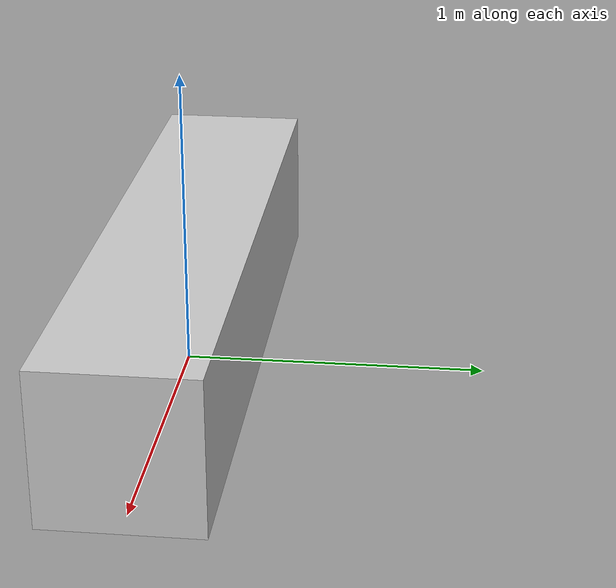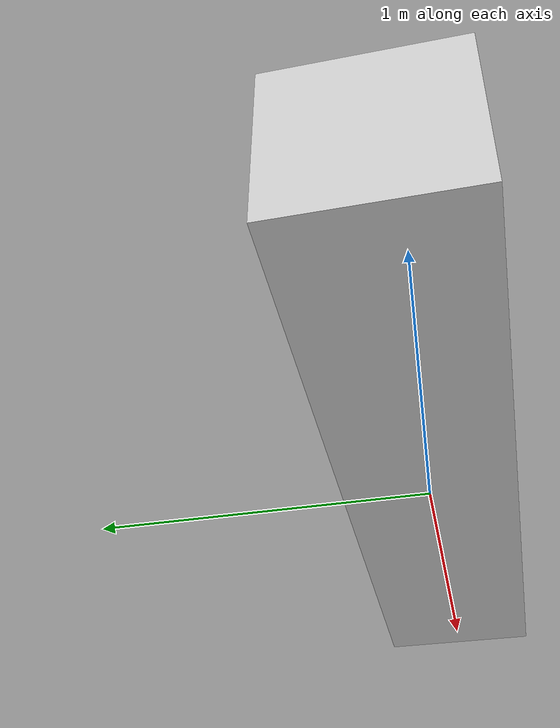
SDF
<?xml version="1.0"?>
<sdf version="1.6">
  <model name="rwc2013/tv_cabinet">
    <link name="1_link">
      <collision name="1_col">
        <geometry>
          <box>
            <size>2.2 0.5 0.5</size>
          </box>
        </geometry>
      </collision>
      <visual name="1_vis">
        <geometry>
          <box>
            <size>2.2 0.5 0.5</size>
          </box>
        </geometry>
        <material>
          <ambient>0.8 0.8 0.8 1</ambient>
        </material>
      </visual>
      <pose>0.0 0.0 0.25 0 0 0</pose>
    </link>
    <static>true</static>
  </model>
</sdf>
